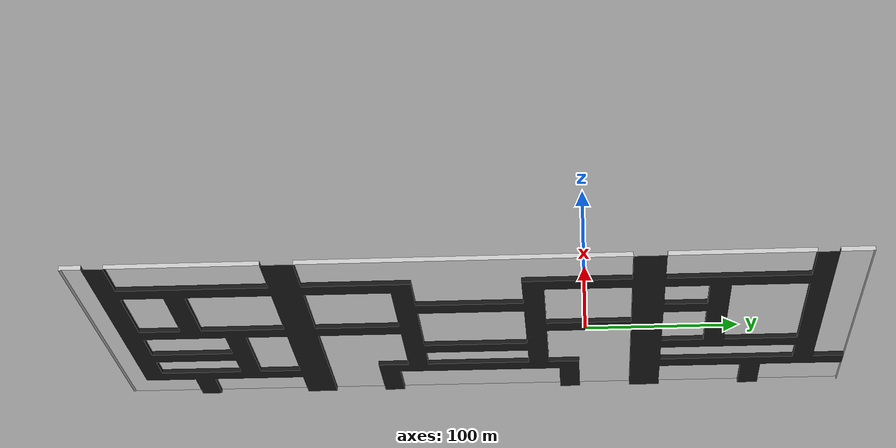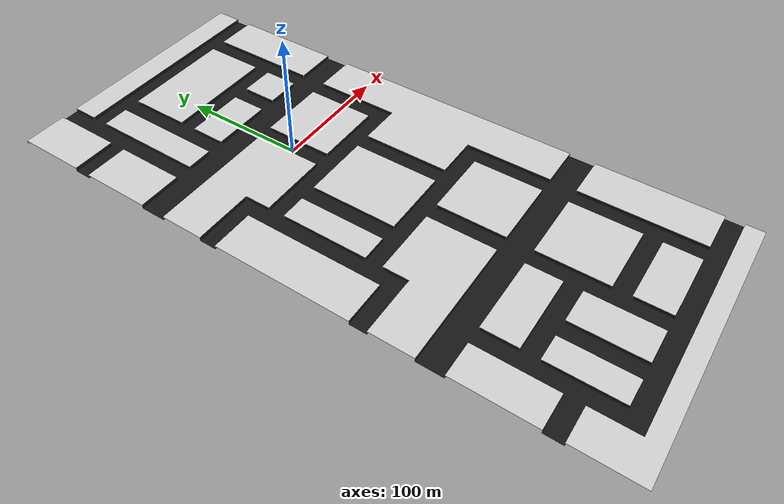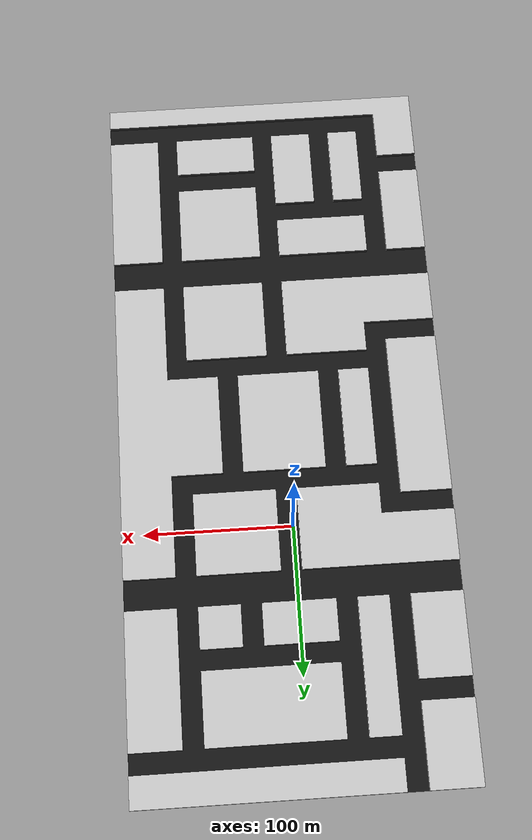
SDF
<?xml version='1.0'?>
<sdf version="1.4">
<model name="cityMedium">
  <pose>0 0 0 0 0 0</pose>
  <static>true</static>
    <link name="city">
    	<pose>0 0 0.749745 0 0 0</pose>
      <collision name="collision">
            <geometry>
              <mesh>
            		<uri>model://cityMedium/meshes/model.dae</uri>
          		</mesh>
            </geometry>
       </collision>
      <visual name="visual">
        <geometry>
          <mesh>
            <uri>model://cityMedium/meshes/model.dae</uri>
          </mesh>
        </geometry>
      </visual>
    </link>
  </model>
</sdf>
